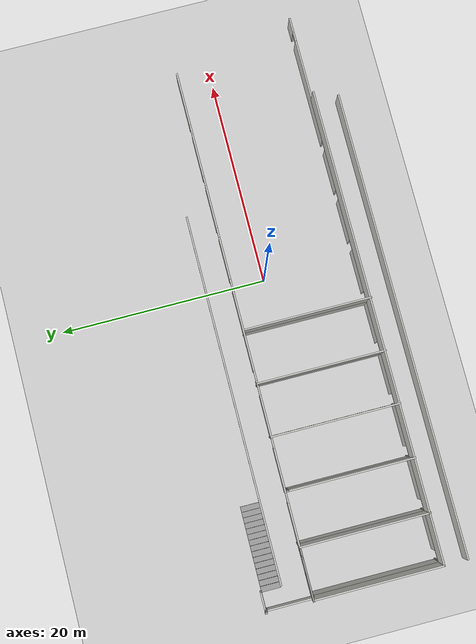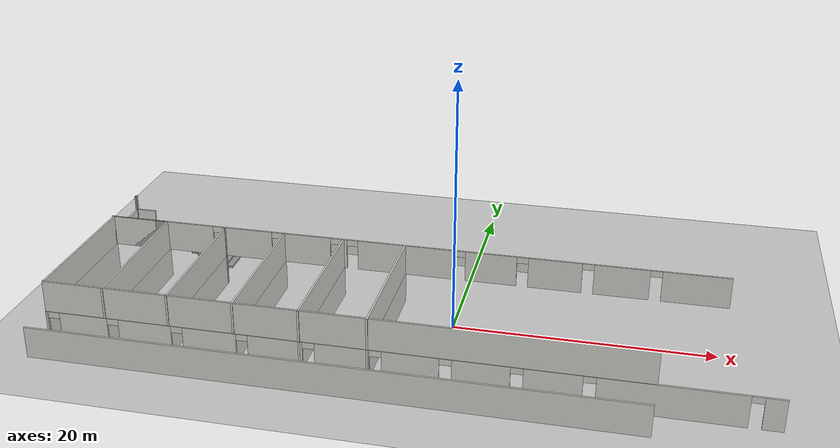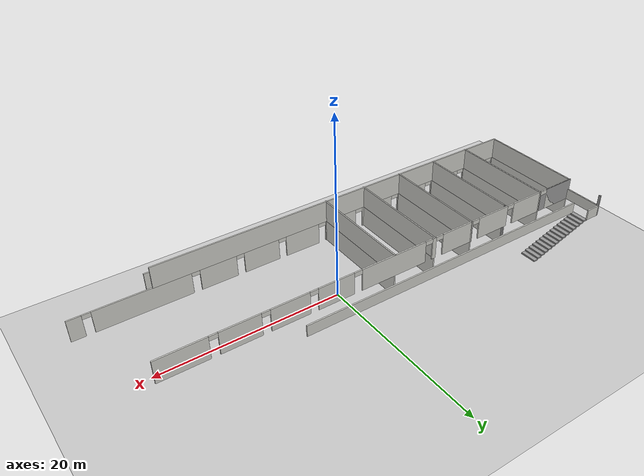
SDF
<sdf version="1.6">
 <world name="default">
  <model name="ground_plane">
   <static>1</static>
   <link name="link">
    <collision name="collision">
     <geometry><plane><normal>0 0 1</normal><size>100 100</size></plane></geometry>
     <surface>
      <contact><collide_bitmask>65535</collide_bitmask></contact>
      <friction><ode><mu>100</mu><mu2>50</mu2></ode></friction>
     </surface>
    </collision>
    <visual name="visual">
     <cast_shadows>0</cast_shadows>
     <geometry><plane><normal>0 0 1</normal><size>100 100</size></plane></geometry>
     <material>
      <script><uri>file://media/materials/scripts/gazebo.material</uri><name>Gazebo/Grey</name></script>
     </material>
    </visual>
   </link>
  </model>
  <model name="ifes_bloco_m">
   <pose>0.003818 -4.2564 0 0 -0 0</pose>
   <link name="Stairs_0">
    <visual name="Stairs_0_Visual_0">
     <pose>-20.4971 10.9295 0.083333 0 -0 -1.5708</pose>
     <geometry><box><size>1.87896 0.517069 0.166667</size></box></geometry>
     <material>
      <script><uri>file://media/materials/scripts/gazebo.material</uri><name>Gazebo/Grey</name></script>
      <ambient>1 1 1 1</ambient>
     </material>
     <meta><layer>0</layer></meta>
    </visual>
    <collision name="Stairs_0_Collision_0">
     <geometry><box><size>1.87896 0.517069 0.166667</size></box></geometry>
     <pose>-20.4971 10.9295 0.083333 0 -0 -1.5708</pose>
    </collision>
    <visual name="Stairs_0_Visual_1">
     <pose>-21.0141 10.9295 0.25 0 -0 -1.5708</pose>
     <geometry><box><size>1.87896 0.517069 0.166667</size></box></geometry>
     <material>
      <script><uri>file://media/materials/scripts/gazebo.material</uri><name>Gazebo/Grey</name></script>
      <ambient>1 1 1 1</ambient>
     </material>
     <meta><layer>0</layer></meta>
    </visual>
    <collision name="Stairs_0_Collision_1">
     <geometry><box><size>1.87896 0.517069 0.166667</size></box></geometry>
     <pose>-21.0141 10.9295 0.25 0 -0 -1.5708</pose>
    </collision>
    <visual name="Stairs_0_Visual_2">
     <pose>-21.5312 10.9295 0.416667 0 -0 -1.5708</pose>
     <geometry><box><size>1.87896 0.517069 0.166667</size></box></geometry>
     <material>
      <script><uri>file://media/materials/scripts/gazebo.material</uri><name>Gazebo/Grey</name></script>
      <ambient>1 1 1 1</ambient>
     </material>
     <meta><layer>0</layer></meta>
    </visual>
    <collision name="Stairs_0_Collision_2">
     <geometry><box><size>1.87896 0.517069 0.166667</size></box></geometry>
     <pose>-21.5312 10.9295 0.416667 0 -0 -1.5708</pose>
    </collision>
    <visual name="Stairs_0_Visual_3">
     <pose>-22.0483 10.9295 0.583333 0 -0 -1.5708</pose>
     <geometry><box><size>1.87896 0.517069 0.166667</size></box></geometry>
     <material>
      <script><uri>file://media/materials/scripts/gazebo.material</uri><name>Gazebo/Grey</name></script>
      <ambient>1 1 1 1</ambient>
     </material>
     <meta><layer>0</layer></meta>
    </visual>
    <collision name="Stairs_0_Collision_3">
     <geometry><box><size>1.87896 0.517069 0.166667</size></box></geometry>
     <pose>-22.0483 10.9295 0.583333 0 -0 -1.5708</pose>
    </collision>
    <visual name="Stairs_0_Visual_4">
     <pose>-22.5653 10.9295 0.75 0 -0 -1.5708</pose>
     <geometry><box><size>1.87896 0.517069 0.166667</size></box></geometry>
     <material>
      <script><uri>file://media/materials/scripts/gazebo.material</uri><name>Gazebo/Grey</name></script>
      <ambient>1 1 1 1</ambient>
     </material>
     <meta><layer>0</layer></meta>
    </visual>
    <collision name="Stairs_0_Collision_4">
     <geometry><box><size>1.87896 0.517069 0.166667</size></box></geometry>
     <pose>-22.5653 10.9295 0.75 0 -0 -1.5708</pose>
    </collision>
    <visual name="Stairs_0_Visual_5">
     <pose>-23.0824 10.9295 0.916667 0 -0 -1.5708</pose>
     <geometry><box><size>1.87896 0.517069 0.166667</size></box></geometry>
     <material>
      <script><uri>file://media/materials/scripts/gazebo.material</uri><name>Gazebo/Grey</name></script>
      <ambient>1 1 1 1</ambient>
     </material>
     <meta><layer>0</layer></meta>
    </visual>
    <collision name="Stairs_0_Collision_5">
     <geometry><box><size>1.87896 0.517069 0.166667</size></box></geometry>
     <pose>-23.0824 10.9295 0.916667 0 -0 -1.5708</pose>
    </collision>
    <visual name="Stairs_0_Visual_6">
     <pose>-23.5995 10.9295 1.08333 0 -0 -1.5708</pose>
     <geometry><box><size>1.87896 0.517069 0.166667</size></box></geometry>
     <material>
      <script><uri>file://media/materials/scripts/gazebo.material</uri><name>Gazebo/Grey</name></script>
      <ambient>1 1 1 1</ambient>
     </material>
     <meta><layer>0</layer></meta>
    </visual>
    <collision name="Stairs_0_Collision_6">
     <geometry><box><size>1.87896 0.517069 0.166667</size></box></geometry>
     <pose>-23.5995 10.9295 1.08333 0 -0 -1.5708</pose>
    </collision>
    <visual name="Stairs_0_Visual_7">
     <pose>-24.1166 10.9295 1.25 0 -0 -1.5708</pose>
     <geometry><box><size>1.87896 0.517069 0.166667</size></box></geometry>
     <material>
      <script><uri>file://media/materials/scripts/gazebo.material</uri><name>Gazebo/Grey</name></script>
      <ambient>1 1 1 1</ambient>
     </material>
     <meta><layer>0</layer></meta>
    </visual>
    <collision name="Stairs_0_Collision_7">
     <geometry><box><size>1.87896 0.517069 0.166667</size></box></geometry>
     <pose>-24.1166 10.9295 1.25 0 -0 -1.5708</pose>
    </collision>
    <visual name="Stairs_0_Visual_8">
     <pose>-24.6336 10.9295 1.41667 0 -0 -1.5708</pose>
     <geometry><box><size>1.87896 0.517069 0.166667</size></box></geometry>
     <material>
      <script><uri>file://media/materials/scripts/gazebo.material</uri><name>Gazebo/Grey</name></script>
      <ambient>1 1 1 1</ambient>
     </material>
     <meta><layer>0</layer></meta>
    </visual>
    <collision name="Stairs_0_Collision_8">
     <geometry><box><size>1.87896 0.517069 0.166667</size></box></geometry>
     <pose>-24.6336 10.9295 1.41667 0 -0 -1.5708</pose>
    </collision>
    <visual name="Stairs_0_Visual_9">
     <pose>-25.1507 10.9295 1.58333 0 -0 -1.5708</pose>
     <geometry><box><size>1.87896 0.517069 0.166667</size></box></geometry>
     <material>
      <script><uri>file://media/materials/scripts/gazebo.material</uri><name>Gazebo/Grey</name></script>
      <ambient>1 1 1 1</ambient>
     </material>
     <meta><layer>0</layer></meta>
    </visual>
    <collision name="Stairs_0_Collision_9">
     <geometry><box><size>1.87896 0.517069 0.166667</size></box></geometry>
     <pose>-25.1507 10.9295 1.58333 0 -0 -1.5708</pose>
    </collision>
    <visual name="Stairs_0_Visual_10">
     <pose>-25.6678 10.9295 1.75 0 -0 -1.5708</pose>
     <geometry><box><size>1.87896 0.517069 0.166667</size></box></geometry>
     <material>
      <script><uri>file://media/materials/scripts/gazebo.material</uri><name>Gazebo/Grey</name></script>
      <ambient>1 1 1 1</ambient>
     </material>
     <meta><layer>0</layer></meta>
    </visual>
    <collision name="Stairs_0_Collision_10">
     <geometry><box><size>1.87896 0.517069 0.166667</size></box></geometry>
     <pose>-25.6678 10.9295 1.75 0 -0 -1.5708</pose>
    </collision>
    <visual name="Stairs_0_Visual_11">
     <pose>-26.1848 10.9295 1.91667 0 -0 -1.5708</pose>
     <geometry><box><size>1.87896 0.517069 0.166667</size></box></geometry>
     <material>
      <script><uri>file://media/materials/scripts/gazebo.material</uri><name>Gazebo/Grey</name></script>
      <ambient>1 1 1 1</ambient>
     </material>
     <meta><layer>0</layer></meta>
    </visual>
    <collision name="Stairs_0_Collision_11">
     <geometry><box><size>1.87896 0.517069 0.166667</size></box></geometry>
     <pose>-26.1848 10.9295 1.91667 0 -0 -1.5708</pose>
    </collision>
    <visual name="Stairs_0_Visual_12">
     <pose>-26.7019 10.9295 2.08333 0 -0 -1.5708</pose>
     <geometry><box><size>1.87896 0.517069 0.166667</size></box></geometry>
     <material>
      <script><uri>file://media/materials/scripts/gazebo.material</uri><name>Gazebo/Grey</name></script>
      <ambient>1 1 1 1</ambient>
     </material>
     <meta><layer>0</layer></meta>
    </visual>
    <collision name="Stairs_0_Collision_12">
     <geometry><box><size>1.87896 0.517069 0.166667</size></box></geometry>
     <pose>-26.7019 10.9295 2.08333 0 -0 -1.5708</pose>
    </collision>
    <visual name="Stairs_0_Visual_13">
     <pose>-27.219 10.9295 2.25 0 -0 -1.5708</pose>
     <geometry><box><size>1.87896 0.517069 0.166667</size></box></geometry>
     <material>
      <script><uri>file://media/materials/scripts/gazebo.material</uri><name>Gazebo/Grey</name></script>
      <ambient>1 1 1 1</ambient>
     </material>
     <meta><layer>0</layer></meta>
    </visual>
    <collision name="Stairs_0_Collision_13">
     <geometry><box><size>1.87896 0.517069 0.166667</size></box></geometry>
     <pose>-27.219 10.9295 2.25 0 -0 -1.5708</pose>
    </collision>
    <visual name="Stairs_0_Visual_14">
     <pose>-27.736 10.9295 2.41667 0 -0 -1.5708</pose>
     <geometry><box><size>1.87896 0.517069 0.166667</size></box></geometry>
     <material>
      <script><uri>file://media/materials/scripts/gazebo.material</uri><name>Gazebo/Grey</name></script>
      <ambient>1 1 1 1</ambient>
     </material>
     <meta><layer>0</layer></meta>
    </visual>
    <collision name="Stairs_0_Collision_14">
     <geometry><box><size>1.87896 0.517069 0.166667</size></box></geometry>
     <pose>-27.736 10.9295 2.41667 0 -0 -1.5708</pose>
    </collision>
   </link>
   <link name="Wall_104">
    <collision name="Wall_104_Collision">
     <geometry><box><size>4.54023 0.15 1.25</size></box></geometry>
     <pose>0 0 0.625 0 -0 0</pose>
    </collision>
    <visual name="Wall_104_Visual">
     <pose>0 0 0.625 0 -0 0</pose>
     <geometry><box><size>4.54023 0.15 1.25</size></box></geometry>
     <material>
      <script><uri>file://media/materials/scripts/gazebo.material</uri><name>Gazebo/CeilingTiled</name></script>
      <ambient>0.921569 0.807843 0.615686 1</ambient>
     </material>
     <meta><layer>1</layer></meta>
    </visual>
    <pose>-29.4926 9.61614 2.5 0 -0 1.5708</pose>
   </link>
   <link name="Wall_105">
    <collision name="Wall_105_Collision">
     <geometry><box><size>0.25 0.15 2.5</size></box></geometry>
     <pose>0 0 1.25 0 -0 0</pose>
    </collision>
    <visual name="Wall_105_Visual">
     <pose>0 0 1.25 0 -0 0</pose>
     <geometry><box><size>0.25 0.15 2.5</size></box></geometry>
     <material>
      <script><uri>file://media/materials/scripts/gazebo.material</uri><name>Gazebo/Grey</name></script>
      <ambient>1 1 1 1</ambient>
     </material>
     <meta><layer>1</layer></meta>
    </visual>
    <pose>-29.4926 11.8611 2.5 0 -0 1.5708</pose>
   </link>
   <link name="Wall_106">
    <collision name="Wall_106_Collision">
     <geometry><box><size>1.75 0.15 1.25</size></box></geometry>
     <pose>0 0 0.625 0 -0 0</pose>
    </collision>
    <visual name="Wall_106_Visual">
     <pose>0 0 0.625 0 -0 0</pose>
     <geometry><box><size>1.75 0.15 1.25</size></box></geometry>
     <material>
      <script><uri>file://media/materials/scripts/gazebo.material</uri><name>Gazebo/CeilingTiled</name></script>
      <ambient>0.921569 0.807843 0.615686 1</ambient>
     </material>
     <meta><layer>1</layer></meta>
    </visual>
    <pose>-28.6927 11.9111 2.5 0 -0 0</pose>
   </link>
   <link name="Wall_108">
    <collision name="Wall_108_Collision">
     <geometry><box><size>35 0.15 1.25</size></box></geometry>
     <pose>0 0 0.625 0 -0 0</pose>
    </collision>
    <visual name="Wall_108_Visual">
     <pose>0 0 0.625 0 -0 0</pose>
     <geometry><box><size>35 0.15 1.25</size></box></geometry>
     <material>
      <script><uri>file://media/materials/scripts/gazebo.material</uri><name>Gazebo/CeilingTiled</name></script>
      <ambient>0.921569 0.807843 0.615686 1</ambient>
     </material>
     <meta><layer>1</layer></meta>
    </visual>
    <pose>-10.2627 9.98214 2.5 0 -0 0</pose>
   </link>
   <link name="Wall_157">
    <collision name="Wall_157_Collision">
     <geometry><box><size>5 0.15 2.5</size></box></geometry>
     <pose>0 0 1.25 0 -0 0</pose>
    </collision>
    <visual name="Wall_157_Visual">
     <pose>0 0 1.25 0 -0 0</pose>
     <geometry><box><size>5 0.15 2.5</size></box></geometry>
     <material>
      <script><uri>file://media/materials/scripts/gazebo.material</uri><name>Gazebo/Grey</name></script>
      <ambient>1 1 1 1</ambient>
     </material>
     <meta><layer>1</layer></meta>
    </visual>
    <pose>-27.1432 7.51797 2.5 0 -0 3.14159</pose>
   </link>
   <link name="Wall_158">
    <pose>-4.51821 7.51797 2.5 0 -0 0</pose>
    <visual name="Wall_158_Visual_0">
     <pose>-23.1848 0 1.25 0 -0 0</pose>
     <geometry><box><size>3.88049 0.15 2.5</size></box></geometry>
     <material>
      <script><uri>file://media/materials/scripts/gazebo.material</uri><name>Gazebo/CeilingTiled</name></script>
      <ambient>1 1 1 1</ambient>
     </material>
     <meta><layer>1</layer></meta>
    </visual>
    <collision name="Wall_158_Collision_0">
     <geometry><box><size>3.88049 0.15 2.5</size></box></geometry>
     <pose>-23.1848 0 1.25 0 -0 0</pose>
    </collision>
    <visual name="Wall_158_Visual_1">
     <pose>-18.2616 0 1.25 0 -0 0</pose>
     <geometry><box><size>4.16574 0.15 2.5</size></box></geometry>
     <material>
      <script><uri>file://media/materials/scripts/gazebo.material</uri><name>Gazebo/CeilingTiled</name></script>
      <ambient>1 1 1 1</ambient>
     </material>
     <meta><layer>1</layer></meta>
    </visual>
    <collision name="Wall_158_Collision_1">
     <geometry><box><size>4.16574 0.15 2.5</size></box></geometry>
     <pose>-18.2616 0 1.25 0 -0 0</pose>
    </collision>
    <visual name="Wall_158_Visual_2">
     <pose>-13.2135 0 1.25 0 -0 0</pose>
     <geometry><box><size>4.13056 0.15 2.5</size></box></geometry>
     <material>
      <script><uri>file://media/materials/scripts/gazebo.material</uri><name>Gazebo/CeilingTiled</name></script>
      <ambient>1 1 1 1</ambient>
     </material>
     <meta><layer>1</layer></meta>
    </visual>
    <collision name="Wall_158_Collision_2">
     <geometry><box><size>4.13056 0.15 2.5</size></box></geometry>
     <pose>-13.2135 0 1.25 0 -0 0</pose>
    </collision>
    <visual name="Wall_158_Visual_3">
     <pose>-8.2181 0 1.25 0 -0 0</pose>
     <geometry><box><size>4.0602 0.15 2.5</size></box></geometry>
     <material>
      <script><uri>file://media/materials/scripts/gazebo.material</uri><name>Gazebo/CeilingTiled</name></script>
      <ambient>1 1 1 1</ambient>
     </material>
     <meta><layer>1</layer></meta>
    </visual>
    <collision name="Wall_158_Collision_3">
     <geometry><box><size>4.0602 0.15 2.5</size></box></geometry>
     <pose>-8.2181 0 1.25 0 -0 0</pose>
    </collision>
    <visual name="Wall_158_Visual_4">
     <pose>-5.05201 0 1.25 0 -0 0</pose>
     <geometry><box><size>0.471971 0.15 2.5</size></box></geometry>
     <material>
      <script><uri>file://media/materials/scripts/gazebo.material</uri><name>Gazebo/CeilingTiled</name></script>
      <ambient>1 1 1 1</ambient>
     </material>
     <meta><layer>1</layer></meta>
    </visual>
    <collision name="Wall_158_Collision_4">
     <geometry><box><size>0.471971 0.15 2.5</size></box></geometry>
     <pose>-5.05201 0 1.25 0 -0 0</pose>
    </collision>
    <visual name="Wall_158_Visual_5">
     <pose>-0.003861 0 1.25 0 -0 0</pose>
     <geometry><box><size>7.82433 0.15 2.5</size></box></geometry>
     <material>
      <script><uri>file://media/materials/scripts/gazebo.material</uri><name>Gazebo/CeilingTiled</name></script>
      <ambient>1 1 1 1</ambient>
     </material>
     <meta><layer>1</layer></meta>
    </visual>
    <collision name="Wall_158_Collision_5">
     <geometry><box><size>7.82433 0.15 2.5</size></box></geometry>
     <pose>-0.003861 0 1.25 0 -0 0</pose>
    </collision>
    <visual name="Wall_158_Visual_6">
     <pose>6.83841 0 1.25 0 -0 0</pose>
     <geometry><box><size>4.0602 0.15 2.5</size></box></geometry>
     <material>
      <script><uri>file://media/materials/scripts/gazebo.material</uri><name>Gazebo/CeilingTiled</name></script>
      <ambient>1 1 1 1</ambient>
     </material>
     <meta><layer>1</layer></meta>
    </visual>
    <collision name="Wall_158_Collision_6">
     <geometry><box><size>4.0602 0.15 2.5</size></box></geometry>
     <pose>6.83841 0 1.25 0 -0 0</pose>
    </collision>
    <visual name="Wall_158_Visual_7">
     <pose>11.8514 0 1.25 0 -0 0</pose>
     <geometry><box><size>4.16574 0.15 2.5</size></box></geometry>
     <material>
      <script><uri>file://media/materials/scripts/gazebo.material</uri><name>Gazebo/CeilingTiled</name></script>
      <ambient>1 1 1 1</ambient>
     </material>
     <meta><layer>1</layer></meta>
    </visual>
    <collision name="Wall_158_Collision_7">
     <geometry><box><size>4.16574 0.15 2.5</size></box></geometry>
     <pose>11.8514 0 1.25 0 -0 0</pose>
    </collision>
    <visual name="Wall_158_Visual_8">
     <pose>16.9523 0 1.25 0 -0 0</pose>
     <geometry><box><size>4.2361 0.15 2.5</size></box></geometry>
     <material>
      <script><uri>file://media/materials/scripts/gazebo.material</uri><name>Gazebo/CeilingTiled</name></script>
      <ambient>1 1 1 1</ambient>
     </material>
     <meta><layer>1</layer></meta>
    </visual>
    <collision name="Wall_158_Collision_8">
     <geometry><box><size>4.2361 0.15 2.5</size></box></geometry>
     <pose>16.9523 0 1.25 0 -0 0</pose>
    </collision>
    <visual name="Wall_158_Visual_9">
     <pose>22.5477 0 1.25 0 -0 0</pose>
     <geometry><box><size>5.15465 0.15 2.5</size></box></geometry>
     <material>
      <script><uri>file://media/materials/scripts/gazebo.material</uri><name>Gazebo/CeilingTiled</name></script>
      <ambient>1 1 1 1</ambient>
     </material>
     <meta><layer>1</layer></meta>
    </visual>
    <collision name="Wall_158_Collision_9">
     <geometry><box><size>5.15465 0.15 2.5</size></box></geometry>
     <pose>22.5477 0 1.25 0 -0 0</pose>
    </collision>
    <visual name="Wall_158_Visual_10">
     <pose>-20.7945 0 2.25 0 -0 0</pose>
     <geometry><box><size>0.9 0.15 0.5</size></box></geometry>
     <material>
      <script><uri>file://media/materials/scripts/gazebo.material</uri><name>Gazebo/CeilingTiled</name></script>
      <ambient>1 1 1 1</ambient>
     </material>
     <meta><layer>1</layer></meta>
    </visual>
    <collision name="Wall_158_Collision_10">
     <geometry><box><size>0.9 0.15 0.5</size></box></geometry>
     <pose>-20.7945 0 2.25 0 -0 0</pose>
    </collision>
    <visual name="Wall_158_Visual_11">
     <pose>-15.7288 0 2.25 0 -0 0</pose>
     <geometry><box><size>0.9 0.15 0.5</size></box></geometry>
     <material>
      <script><uri>file://media/materials/scripts/gazebo.material</uri><name>Gazebo/CeilingTiled</name></script>
      <ambient>1 1 1 1</ambient>
     </material>
     <meta><layer>1</layer></meta>
    </visual>
    <collision name="Wall_158_Collision_11">
     <geometry><box><size>0.9 0.15 0.5</size></box></geometry>
     <pose>-15.7288 0 2.25 0 -0 0</pose>
    </collision>
    <visual name="Wall_158_Visual_12">
     <pose>-10.6982 0 2.25 0 -0 0</pose>
     <geometry><box><size>0.9 0.15 0.5</size></box></geometry>
     <material>
      <script><uri>file://media/materials/scripts/gazebo.material</uri><name>Gazebo/CeilingTiled</name></script>
      <ambient>1 1 1 1</ambient>
     </material>
     <meta><layer>1</layer></meta>
    </visual>
    <collision name="Wall_158_Collision_12">
     <geometry><box><size>0.9 0.15 0.5</size></box></geometry>
     <pose>-10.6982 0 2.25 0 -0 0</pose>
    </collision>
    <visual name="Wall_158_Visual_13">
     <pose>-5.738 0 2.25 0 -0 0</pose>
     <geometry><box><size>0.9 0.15 0.5</size></box></geometry>
     <material>
      <script><uri>file://media/materials/scripts/gazebo.material</uri><name>Gazebo/CeilingTiled</name></script>
      <ambient>1 1 1 1</ambient>
     </material>
     <meta><layer>1</layer></meta>
    </visual>
    <collision name="Wall_158_Collision_13">
     <geometry><box><size>0.9 0.15 0.5</size></box></geometry>
     <pose>-5.738 0 2.25 0 -0 0</pose>
    </collision>
    <visual name="Wall_158_Visual_14">
     <pose>-4.36603 0 2.25 0 -0 0</pose>
     <geometry><box><size>0.9 0.15 0.5</size></box></geometry>
     <material>
      <script><uri>file://media/materials/scripts/gazebo.material</uri><name>Gazebo/CeilingTiled</name></script>
      <ambient>1 1 1 1</ambient>
     </material>
     <meta><layer>1</layer></meta>
    </visual>
    <collision name="Wall_158_Collision_14">
     <geometry><box><size>0.9 0.15 0.5</size></box></geometry>
     <pose>-4.36603 0 2.25 0 -0 0</pose>
    </collision>
    <visual name="Wall_158_Visual_15">
     <pose>4.35831 0 2.25 0 -0 0</pose>
     <geometry><box><size>0.9 0.15 0.5</size></box></geometry>
     <material>
      <script><uri>file://media/materials/scripts/gazebo.material</uri><name>Gazebo/CeilingTiled</name></script>
      <ambient>1 1 1 1</ambient>
     </material>
     <meta><layer>1</layer></meta>
    </visual>
    <collision name="Wall_158_Collision_15">
     <geometry><box><size>0.9 0.15 0.5</size></box></geometry>
     <pose>4.35831 0 2.25 0 -0 0</pose>
    </collision>
    <visual name="Wall_158_Visual_16">
     <pose>9.31851 0 2.25 0 -0 0</pose>
     <geometry><box><size>0.9 0.15 0.5</size></box></geometry>
     <material>
      <script><uri>file://media/materials/scripts/gazebo.material</uri><name>Gazebo/CeilingTiled</name></script>
      <ambient>1 1 1 1</ambient>
     </material>
     <meta><layer>1</layer></meta>
    </visual>
    <collision name="Wall_158_Collision_16">
     <geometry><box><size>0.9 0.15 0.5</size></box></geometry>
     <pose>9.31851 0 2.25 0 -0 0</pose>
    </collision>
    <visual name="Wall_158_Visual_17">
     <pose>14.3843 0 2.25 0 -0 0</pose>
     <geometry><box><size>0.9 0.15 0.5</size></box></geometry>
     <material>
      <script><uri>file://media/materials/scripts/gazebo.material</uri><name>Gazebo/CeilingTiled</name></script>
      <ambient>1 1 1 1</ambient>
     </material>
     <meta><layer>1</layer></meta>
    </visual>
    <collision name="Wall_158_Collision_17">
     <geometry><box><size>0.9 0.15 0.5</size></box></geometry>
     <pose>14.3843 0 2.25 0 -0 0</pose>
    </collision>
    <visual name="Wall_158_Visual_18">
     <pose>19.5204 0 2.25 0 -0 0</pose>
     <geometry><box><size>0.9 0.15 0.5</size></box></geometry>
     <material>
      <script><uri>file://media/materials/scripts/gazebo.material</uri><name>Gazebo/CeilingTiled</name></script>
      <ambient>1 1 1 1</ambient>
     </material>
     <meta><layer>1</layer></meta>
    </visual>
    <collision name="Wall_158_Collision_18">
     <geometry><box><size>0.9 0.15 0.5</size></box></geometry>
     <pose>19.5204 0 2.25 0 -0 0</pose>
    </collision>
   </link>
   <link name="Wall_23">
    <pose>-2.69305 -4.5891 0 0 -0 3.14159</pose>
    <visual name="Wall_23_Visual_0">
     <pose>-26.14 0 1.25 0 -0 0</pose>
     <geometry><box><size>1.46992 0.15 2.5</size></box></geometry>
     <material>
      <script><uri>file://media/materials/scripts/gazebo.material</uri><name>Gazebo/CeilingTiled</name></script>
      <ambient>1 1 1 1</ambient>
     </material>
     <meta><layer>0</layer></meta>
    </visual>
    <collision name="Wall_23_Collision_0">
     <geometry><box><size>1.46992 0.15 2.5</size></box></geometry>
     <pose>-26.14 0 1.25 0 -0 0</pose>
    </collision>
    <visual name="Wall_23_Visual_1">
     <pose>-19.391 0 1.25 0 -0 0</pose>
     <geometry><box><size>10.2281 0.15 2.5</size></box></geometry>
     <material>
      <script><uri>file://media/materials/scripts/gazebo.material</uri><name>Gazebo/CeilingTiled</name></script>
      <ambient>1 1 1 1</ambient>
     </material>
     <meta><layer>0</layer></meta>
    </visual>
    <collision name="Wall_23_Collision_1">
     <geometry><box><size>10.2281 0.15 2.5</size></box></geometry>
     <pose>-19.391 0 1.25 0 -0 0</pose>
    </collision>
    <visual name="Wall_23_Visual_2">
     <pose>-11.3183 0 1.25 0 -0 0</pose>
     <geometry><box><size>4.11739 0.15 2.5</size></box></geometry>
     <material>
      <script><uri>file://media/materials/scripts/gazebo.material</uri><name>Gazebo/CeilingTiled</name></script>
      <ambient>1 1 1 1</ambient>
     </material>
     <meta><layer>0</layer></meta>
    </visual>
    <collision name="Wall_23_Collision_2">
     <geometry><box><size>4.11739 0.15 2.5</size></box></geometry>
     <pose>-11.3183 0 1.25 0 -0 0</pose>
    </collision>
    <visual name="Wall_23_Visual_3">
     <pose>-6.28952 0 1.25 0 -0 0</pose>
     <geometry><box><size>4.14023 0.15 2.5</size></box></geometry>
     <material>
      <script><uri>file://media/materials/scripts/gazebo.material</uri><name>Gazebo/CeilingTiled</name></script>
      <ambient>1 1 1 1</ambient>
     </material>
     <meta><layer>0</layer></meta>
    </visual>
    <collision name="Wall_23_Collision_3">
     <geometry><box><size>4.14023 0.15 2.5</size></box></geometry>
     <pose>-6.28952 0 1.25 0 -0 0</pose>
    </collision>
    <visual name="Wall_23_Visual_4">
     <pose>-1.24169 0 1.25 0 -0 0</pose>
     <geometry><box><size>4.15543 0.15 2.5</size></box></geometry>
     <material>
      <script><uri>file://media/materials/scripts/gazebo.material</uri><name>Gazebo/CeilingTiled</name></script>
      <ambient>1 1 1 1</ambient>
     </material>
     <meta><layer>0</layer></meta>
    </visual>
    <collision name="Wall_23_Collision_4">
     <geometry><box><size>4.15543 0.15 2.5</size></box></geometry>
     <pose>-1.24169 0 1.25 0 -0 0</pose>
    </collision>
    <visual name="Wall_23_Visual_5">
     <pose>3.76959 0 1.25 0 -0 0</pose>
     <geometry><box><size>4.06714 0.15 2.5</size></box></geometry>
     <material>
      <script><uri>file://media/materials/scripts/gazebo.material</uri><name>Gazebo/CeilingTiled</name></script>
      <ambient>1 1 1 1</ambient>
     </material>
     <meta><layer>0</layer></meta>
    </visual>
    <collision name="Wall_23_Collision_5">
     <geometry><box><size>4.06714 0.15 2.5</size></box></geometry>
     <pose>3.76959 0 1.25 0 -0 0</pose>
    </collision>
    <visual name="Wall_23_Visual_6">
     <pose>8.78263 0 1.25 0 -0 0</pose>
     <geometry><box><size>4.15895 0.15 2.5</size></box></geometry>
     <material>
      <script><uri>file://media/materials/scripts/gazebo.material</uri><name>Gazebo/CeilingTiled</name></script>
      <ambient>1 1 1 1</ambient>
     </material>
     <meta><layer>0</layer></meta>
    </visual>
    <collision name="Wall_23_Collision_6">
     <geometry><box><size>4.15895 0.15 2.5</size></box></geometry>
     <pose>8.78263 0 1.25 0 -0 0</pose>
    </collision>
    <visual name="Wall_23_Visual_7">
     <pose>13.8338 0 1.25 0 -0 0</pose>
     <geometry><box><size>4.14348 0.15 2.5</size></box></geometry>
     <material>
      <script><uri>file://media/materials/scripts/gazebo.material</uri><name>Gazebo/CeilingTiled</name></script>
      <ambient>1 1 1 1</ambient>
     </material>
     <meta><layer>0</layer></meta>
    </visual>
    <collision name="Wall_23_Collision_7">
     <geometry><box><size>4.14348 0.15 2.5</size></box></geometry>
     <pose>13.8338 0 1.25 0 -0 0</pose>
    </collision>
    <visual name="Wall_23_Visual_8">
     <pose>18.8947 0 1.25 0 -0 0</pose>
     <geometry><box><size>4.17826 0.15 2.5</size></box></geometry>
     <material>
      <script><uri>file://media/materials/scripts/gazebo.material</uri><name>Gazebo/CeilingTiled</name></script>
      <ambient>1 1 1 1</ambient>
     </material>
     <meta><layer>0</layer></meta>
    </visual>
    <collision name="Wall_23_Collision_8">
     <geometry><box><size>4.17826 0.15 2.5</size></box></geometry>
     <pose>18.8947 0 1.25 0 -0 0</pose>
    </collision>
    <visual name="Wall_23_Visual_9">
     <pose>23.8121 0 1.25 0 -0 0</pose>
     <geometry><box><size>3.85652 0.15 2.5</size></box></geometry>
     <material>
      <script><uri>file://media/materials/scripts/gazebo.material</uri><name>Gazebo/CeilingTiled</name></script>
      <ambient>1 1 1 1</ambient>
     </material>
     <meta><layer>0</layer></meta>
    </visual>
    <collision name="Wall_23_Collision_9">
     <geometry><box><size>3.85652 0.15 2.5</size></box></geometry>
     <pose>23.8121 0 1.25 0 -0 0</pose>
    </collision>
    <visual name="Wall_23_Visual_10">
     <pose>26.7577 0 1.25 0 -0 0</pose>
     <geometry><box><size>0.234633 0.15 2.5</size></box></geometry>
     <material>
      <script><uri>file://media/materials/scripts/gazebo.material</uri><name>Gazebo/CeilingTiled</name></script>
      <ambient>1 1 1 1</ambient>
     </material>
     <meta><layer>0</layer></meta>
    </visual>
    <collision name="Wall_23_Collision_10">
     <geometry><box><size>0.234633 0.15 2.5</size></box></geometry>
     <pose>26.7577 0 1.25 0 -0 0</pose>
    </collision>
    <visual name="Wall_23_Visual_11">
     <pose>-24.9551 0 2.25 0 -0 0</pose>
     <geometry><box><size>0.9 0.15 0.5</size></box></geometry>
     <material>
      <script><uri>file://media/materials/scripts/gazebo.material</uri><name>Gazebo/CeilingTiled</name></script>
      <ambient>1 1 1 1</ambient>
     </material>
     <meta><layer>0</layer></meta>
    </visual>
    <collision name="Wall_23_Collision_11">
     <geometry><box><size>0.9 0.15 0.5</size></box></geometry>
     <pose>-24.9551 0 2.25 0 -0 0</pose>
    </collision>
    <visual name="Wall_23_Visual_12">
     <pose>-13.827 0 2.25 0 -0 0</pose>
     <geometry><box><size>0.9 0.15 0.5</size></box></geometry>
     <material>
      <script><uri>file://media/materials/scripts/gazebo.material</uri><name>Gazebo/CeilingTiled</name></script>
      <ambient>1 1 1 1</ambient>
     </material>
     <meta><layer>0</layer></meta>
    </visual>
    <collision name="Wall_23_Collision_12">
     <geometry><box><size>0.9 0.15 0.5</size></box></geometry>
     <pose>-13.827 0 2.25 0 -0 0</pose>
    </collision>
    <visual name="Wall_23_Visual_13">
     <pose>-8.80963 0 2.25 0 -0 0</pose>
     <geometry><box><size>0.9 0.15 0.5</size></box></geometry>
     <material>
      <script><uri>file://media/materials/scripts/gazebo.material</uri><name>Gazebo/CeilingTiled</name></script>
      <ambient>1 1 1 1</ambient>
     </material>
     <meta><layer>0</layer></meta>
    </visual>
    <collision name="Wall_23_Collision_13">
     <geometry><box><size>0.9 0.15 0.5</size></box></geometry>
     <pose>-8.80963 0 2.25 0 -0 0</pose>
    </collision>
    <visual name="Wall_23_Visual_14">
     <pose>-3.76941 0 2.25 0 -0 0</pose>
     <geometry><box><size>0.9 0.15 0.5</size></box></geometry>
     <material>
      <script><uri>file://media/materials/scripts/gazebo.material</uri><name>Gazebo/CeilingTiled</name></script>
      <ambient>1 1 1 1</ambient>
     </material>
     <meta><layer>0</layer></meta>
    </visual>
    <collision name="Wall_23_Collision_14">
     <geometry><box><size>0.9 0.15 0.5</size></box></geometry>
     <pose>-3.76941 0 2.25 0 -0 0</pose>
    </collision>
    <visual name="Wall_23_Visual_15">
     <pose>1.28602 0 2.25 0 -0 0</pose>
     <geometry><box><size>0.9 0.15 0.5</size></box></geometry>
     <material>
      <script><uri>file://media/materials/scripts/gazebo.material</uri><name>Gazebo/CeilingTiled</name></script>
      <ambient>1 1 1 1</ambient>
     </material>
     <meta><layer>0</layer></meta>
    </visual>
    <collision name="Wall_23_Collision_15">
     <geometry><box><size>0.9 0.15 0.5</size></box></geometry>
     <pose>1.28602 0 2.25 0 -0 0</pose>
    </collision>
    <visual name="Wall_23_Visual_16">
     <pose>6.25316 0 2.25 0 -0 0</pose>
     <geometry><box><size>0.9 0.15 0.5</size></box></geometry>
     <material>
      <script><uri>file://media/materials/scripts/gazebo.material</uri><name>Gazebo/CeilingTiled</name></script>
      <ambient>1 1 1 1</ambient>
     </material>
     <meta><layer>0</layer></meta>
    </visual>
    <collision name="Wall_23_Collision_16">
     <geometry><box><size>0.9 0.15 0.5</size></box></geometry>
     <pose>6.25316 0 2.25 0 -0 0</pose>
    </collision>
    <visual name="Wall_23_Visual_17">
     <pose>11.3121 0 2.25 0 -0 0</pose>
     <geometry><box><size>0.9 0.15 0.5</size></box></geometry>
     <material>
      <script><uri>file://media/materials/scripts/gazebo.material</uri><name>Gazebo/CeilingTiled</name></script>
      <ambient>1 1 1 1</ambient>
     </material>
     <meta><layer>0</layer></meta>
    </visual>
    <collision name="Wall_23_Collision_17">
     <geometry><box><size>0.9 0.15 0.5</size></box></geometry>
     <pose>11.3121 0 2.25 0 -0 0</pose>
    </collision>
    <visual name="Wall_23_Visual_18">
     <pose>16.3556 0 2.25 0 -0 0</pose>
     <geometry><box><size>0.9 0.15 0.5</size></box></geometry>
     <material>
      <script><uri>file://media/materials/scripts/gazebo.material</uri><name>Gazebo/CeilingTiled</name></script>
      <ambient>1 1 1 1</ambient>
     </material>
     <meta><layer>0</layer></meta>
    </visual>
    <collision name="Wall_23_Collision_18">
     <geometry><box><size>0.9 0.15 0.5</size></box></geometry>
     <pose>16.3556 0 2.25 0 -0 0</pose>
    </collision>
    <visual name="Wall_23_Visual_19">
     <pose>21.4338 0 2.25 0 -0 0</pose>
     <geometry><box><size>0.9 0.15 0.5</size></box></geometry>
     <material>
      <script><uri>file://media/materials/scripts/gazebo.material</uri><name>Gazebo/CeilingTiled</name></script>
      <ambient>1 1 1 1</ambient>
     </material>
     <meta><layer>0</layer></meta>
    </visual>
    <collision name="Wall_23_Collision_19">
     <geometry><box><size>0.9 0.15 0.5</size></box></geometry>
     <pose>21.4338 0 2.25 0 -0 0</pose>
    </collision>
    <visual name="Wall_23_Visual_20">
     <pose>26.1904 0 2.25 0 -0 0</pose>
     <geometry><box><size>0.9 0.15 0.5</size></box></geometry>
     <material>
      <script><uri>file://media/materials/scripts/gazebo.material</uri><name>Gazebo/CeilingTiled</name></script>
      <ambient>1 1 1 1</ambient>
     </material>
     <meta><layer>0</layer></meta>
    </visual>
    <collision name="Wall_23_Collision_20">
     <geometry><box><size>0.9 0.15 0.5</size></box></geometry>
     <pose>26.1904 0 2.25 0 -0 0</pose>
    </collision>
   </link>
   <link name="Wall_24">
    <collision name="Wall_24_Collision">
     <geometry><box><size>12.2 0.15 2.5</size></box></geometry>
     <pose>0 0 1.25 0 -0 0</pose>
    </collision>
    <visual name="Wall_24_Visual">
     <pose>0 0 1.25 0 -0 0</pose>
     <geometry><box><size>12.2 0.15 2.5</size></box></geometry>
     <material>
      <script><uri>file://media/materials/scripts/gazebo.material</uri><name>Gazebo/CeilingTiled</name></script>
      <ambient>1 1 1 1</ambient>
     </material>
     <meta><layer>0</layer></meta>
    </visual>
    <pose>-29.4931 1.4359 0 0 -0 1.5708</pose>
   </link>
   <link name="Wall_26">
    <collision name="Wall_26_Collision">
     <geometry><box><size>45.5 0.15 2.5</size></box></geometry>
     <pose>0 0 1.25 0 -0 0</pose>
    </collision>
    <visual name="Wall_26_Visual">
     <pose>0 0 1.25 0 -0 0</pose>
     <geometry><box><size>45.5 0.15 2.5</size></box></geometry>
     <material>
      <script><uri>file://media/materials/scripts/gazebo.material</uri><name>Gazebo/CeilingTiled</name></script>
      <ambient>1 1 1 1</ambient>
     </material>
     <meta><layer>0</layer></meta>
    </visual>
    <pose>-7.20747 -7.18425 0 0 -0 0</pose>
   </link>
   <link name="Wall_45">
    <collision name="Wall_45_Collision">
     <geometry><box><size>12.25 0.15 2.5</size></box></geometry>
     <pose>0 0 1.25 0 -0 0</pose>
    </collision>
    <visual name="Wall_45_Visual">
     <pose>0 0 1.25 0 -0 0</pose>
     <geometry><box><size>12.25 0.15 2.5</size></box></geometry>
     <material>
      <script><uri>file://media/materials/scripts/gazebo.material</uri><name>Gazebo/CeilingTiled</name></script>
      <ambient>1 1 1 1</ambient>
     </material>
     <meta><layer>0</layer></meta>
    </visual>
    <pose>-4.58186 1.44137 0 0 -0 1.5708</pose>
   </link>
   <link name="Wall_47">
    <collision name="Wall_47_Collision">
     <geometry><box><size>12.25 0.15 2.5</size></box></geometry>
     <pose>0 0 1.25 0 -0 0</pose>
    </collision>
    <visual name="Wall_47_Visual">
     <pose>0 0 1.25 0 -0 0</pose>
     <geometry><box><size>12.25 0.15 2.5</size></box></geometry>
     <material>
      <script><uri>file://media/materials/scripts/gazebo.material</uri><name>Gazebo/CeilingTiled</name></script>
      <ambient>1 1 1 1</ambient>
     </material>
     <meta><layer>0</layer></meta>
    </visual>
    <pose>-9.6359 1.44137 0 0 -0 1.5708</pose>
   </link>
   <link name="Wall_49">
    <collision name="Wall_49_Collision">
     <geometry><box><size>12.25 0.15 2.5</size></box></geometry>
     <pose>0 0 1.25 0 -0 0</pose>
    </collision>
    <visual name="Wall_49_Visual">
     <pose>0 0 1.25 0 -0 0</pose>
     <geometry><box><size>12.25 0.15 2.5</size></box></geometry>
     <material>
      <script><uri>file://media/materials/scripts/gazebo.material</uri><name>Gazebo/CeilingTiled</name></script>
      <ambient>1 1 1 1</ambient>
     </material>
     <meta><layer>0</layer></meta>
    </visual>
    <pose>-14.6101 1.46797 0 0 -0 1.5708</pose>
   </link>
   <link name="Wall_51">
    <collision name="Wall_51_Collision">
     <geometry><box><size>12 0.15 2.5</size></box></geometry>
     <pose>0 0 1.25 0 -0 0</pose>
    </collision>
    <visual name="Wall_51_Visual">
     <pose>0 0 1.25 0 -0 0</pose>
     <geometry><box><size>12 0.15 2.5</size></box></geometry>
     <material>
      <script><uri>file://media/materials/scripts/gazebo.material</uri><name>Gazebo/CeilingTiled</name></script>
      <ambient>1 1 1 1</ambient>
     </material>
     <meta><layer>0</layer></meta>
    </visual>
    <pose>-19.6642 1.34297 0 0 -0 1.5708</pose>
   </link>
   <link name="Wall_52">
    <collision name="Wall_52_Collision">
     <geometry><box><size>0.25 0.15 2.5</size></box></geometry>
     <pose>0 0 1.25 0 -0 0</pose>
    </collision>
    <visual name="Wall_52_Visual">
     <pose>0 0 1.25 0 -0 0</pose>
     <geometry><box><size>0.25 0.15 2.5</size></box></geometry>
     <material>
      <script><uri>file://media/materials/scripts/gazebo.material</uri><name>Gazebo/Grey</name></script>
      <ambient>1 1 1 1</ambient>
     </material>
     <meta><layer>0</layer></meta>
    </visual>
    <pose>-19.6642 7.31797 0 0 -0 1.5708</pose>
   </link>
   <link name="Wall_54">
    <collision name="Wall_54_Collision">
     <geometry><box><size>12.25 0.15 2.5</size></box></geometry>
     <pose>0 0 1.25 0 -0 0</pose>
    </collision>
    <visual name="Wall_54_Visual">
     <pose>0 0 1.25 0 -0 0</pose>
     <geometry><box><size>12.25 0.15 2.5</size></box></geometry>
     <material>
      <script><uri>file://media/materials/scripts/gazebo.material</uri><name>Gazebo/CeilingTiled</name></script>
      <ambient>1 1 1 1</ambient>
     </material>
     <meta><layer>0</layer></meta>
    </visual>
    <pose>-24.7182 1.46797 0 0 -0 1.5708</pose>
   </link>
   <link name="Wall_71">
    <collision name="Wall_71_Collision">
     <geometry><box><size>45.25 0.15 2.5</size></box></geometry>
     <pose>0 0 1.25 0 -0 0</pose>
    </collision>
    <visual name="Wall_71_Visual">
     <pose>0 0 1.25 0 -0 0</pose>
     <geometry><box><size>45.25 0.15 2.5</size></box></geometry>
     <material>
      <script><uri>file://media/materials/scripts/gazebo.material</uri><name>Gazebo/CeilingTiled</name></script>
      <ambient>1 1 1 1</ambient>
     </material>
     <meta><layer>1</layer></meta>
    </visual>
    <pose>-6.94305 -4.52757 2.5 0 -0 3.14159</pose>
   </link>
   <link name="Wall_72">
    <collision name="Wall_72_Collision">
     <geometry><box><size>12.0367 0.15 2.5</size></box></geometry>
     <pose>0 0 1.25 0 -0 0</pose>
    </collision>
    <visual name="Wall_72_Visual">
     <pose>0 0 1.25 0 -0 0</pose>
     <geometry><box><size>12.0367 0.15 2.5</size></box></geometry>
     <material>
      <script><uri>file://media/materials/scripts/gazebo.material</uri><name>Gazebo/CeilingTiled</name></script>
      <ambient>1 1 1 1</ambient>
     </material>
     <meta><layer>1</layer></meta>
    </visual>
    <pose>-29.4929 1.47755 2.5 0 -0 1.57076</pose>
   </link>
   <link name="Wall_85">
    <collision name="Wall_85_Collision">
     <geometry><box><size>12.25 0.15 2.5</size></box></geometry>
     <pose>0 0 1.25 0 -0 0</pose>
    </collision>
    <visual name="Wall_85_Visual">
     <pose>0 0 1.25 0 -0 0</pose>
     <geometry><box><size>12.25 0.15 2.5</size></box></geometry>
     <material>
      <script><uri>file://media/materials/scripts/gazebo.material</uri><name>Gazebo/CeilingTiled</name></script>
      <ambient>1 1 1 1</ambient>
     </material>
     <meta><layer>1</layer></meta>
    </visual>
    <pose>-4.58186 1.44137 2.5 0 -0 1.5708</pose>
   </link>
   <link name="Wall_86">
    <collision name="Wall_86_Collision">
     <geometry><box><size>12.25 0.15 2.5</size></box></geometry>
     <pose>0 0 1.25 0 -0 0</pose>
    </collision>
    <visual name="Wall_86_Visual">
     <pose>0 0 1.25 0 -0 0</pose>
     <geometry><box><size>12.25 0.15 2.5</size></box></geometry>
     <material>
      <script><uri>file://media/materials/scripts/gazebo.material</uri><name>Gazebo/CeilingTiled</name></script>
      <ambient>1 1 1 1</ambient>
     </material>
     <meta><layer>1</layer></meta>
    </visual>
    <pose>-9.6359 1.44137 2.5 0 -0 1.5708</pose>
   </link>
   <link name="Wall_87">
    <collision name="Wall_87_Collision">
     <geometry><box><size>12.25 0.15 2.5</size></box></geometry>
     <pose>0 0 1.25 0 -0 0</pose>
    </collision>
    <visual name="Wall_87_Visual">
     <pose>0 0 1.25 0 -0 0</pose>
     <geometry><box><size>12.25 0.15 2.5</size></box></geometry>
     <material>
      <script><uri>file://media/materials/scripts/gazebo.material</uri><name>Gazebo/CeilingTiled</name></script>
      <ambient>1 1 1 1</ambient>
     </material>
     <meta><layer>1</layer></meta>
    </visual>
    <pose>-14.6101 1.46797 2.5 0 -0 1.5708</pose>
   </link>
   <link name="Wall_88">
    <collision name="Wall_88_Collision">
     <geometry><box><size>12 0.15 2.5</size></box></geometry>
     <pose>0 0 1.25 0 -0 0</pose>
    </collision>
    <visual name="Wall_88_Visual">
     <pose>0 0 1.25 0 -0 0</pose>
     <geometry><box><size>12 0.15 2.5</size></box></geometry>
     <material>
      <script><uri>file://media/materials/scripts/gazebo.material</uri><name>Gazebo/CeilingTiled</name></script>
      <ambient>1 1 1 1</ambient>
     </material>
     <meta><layer>1</layer></meta>
    </visual>
    <pose>-19.6642 1.34297 2.5 0 -0 1.5708</pose>
   </link>
   <link name="Wall_89">
    <collision name="Wall_89_Collision">
     <geometry><box><size>0.25 0.15 2.5</size></box></geometry>
     <pose>0 0 1.25 0 -0 0</pose>
    </collision>
    <visual name="Wall_89_Visual">
     <pose>0 0 1.25 0 -0 0</pose>
     <geometry><box><size>0.25 0.15 2.5</size></box></geometry>
     <material>
      <script><uri>file://media/materials/scripts/gazebo.material</uri><name>Gazebo/Grey</name></script>
      <ambient>1 1 1 1</ambient>
     </material>
     <meta><layer>1</layer></meta>
    </visual>
    <pose>-19.6642 7.31797 2.5 0 -0 1.5708</pose>
   </link>
   <link name="Wall_90">
    <collision name="Wall_90_Collision">
     <geometry><box><size>12.25 0.15 2.5</size></box></geometry>
     <pose>0 0 1.25 0 -0 0</pose>
    </collision>
    <visual name="Wall_90_Visual">
     <pose>0 0 1.25 0 -0 0</pose>
     <geometry><box><size>12.25 0.15 2.5</size></box></geometry>
     <material>
      <script><uri>file://media/materials/scripts/gazebo.material</uri><name>Gazebo/CeilingTiled</name></script>
      <ambient>1 1 1 1</ambient>
     </material>
     <meta><layer>1</layer></meta>
    </visual>
    <pose>-24.7182 1.46797 2.5 0 -0 1.5708</pose>
   </link>
   <static>1</static>
  </model>
 </world>
</sdf>
